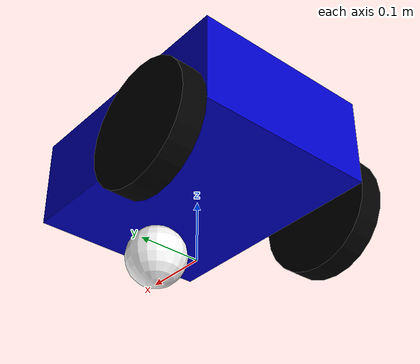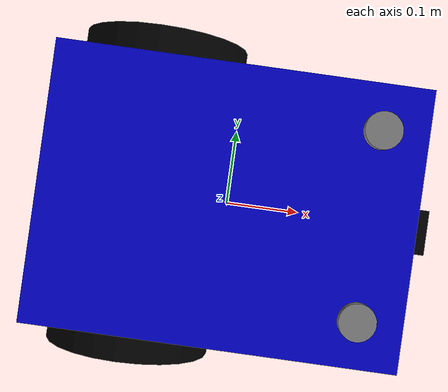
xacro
<?xml version="1.0"?>
<robot xmlns:xacro="http://www.ros.org/wiki/xacro" name="sortabot">

  <!-- MATERIALS -->
  <material name="blue"><color rgba="0 0 0.8 1"/></material>
  <material name="black"><color rgba="0 0 0 1"/></material>
  <material name="white"><color rgba="1 1 1 1"/></material>
  <material name="red"><color rgba="0.8 0 0 1"/></material>
  <material name="grey"><color rgba="0.5 0.5 0.5 1"/></material>

  <!-- CONSTANTS -->
  <xacro:property name="mass_base" value="5.0"/>
  <xacro:property name="chassis_length" value="0.4"/>
  <xacro:property name="chassis_width" value="0.3"/>
  <xacro:property name="chassis_height" value="0.15"/>
  <xacro:property name="wheel_radius" value="0.1"/>
  <xacro:property name="wheel_width" value="0.04"/>
  <xacro:property name="wheel_offset" value="0.17"/>

  <!-- BASE -->
  <link name="base_footprint"/>

  <joint name="base_footprint_joint" type="fixed">
    <parent link="base_footprint"/>
    <child link="base_link"/>
    <origin xyz="0 0 ${wheel_radius}" rpy="0 0 0"/>
  </joint>

  <link name="base_link">
    <visual>
      <origin xyz="0 0 ${chassis_height/2}" rpy="0 0 0"/>
      <geometry><box size="${chassis_length} ${chassis_width} ${chassis_height}"/></geometry>
      <material name="blue"/>
    </visual>
    <collision>
      <origin xyz="0 0 ${chassis_height/2}" rpy="0 0 0"/>
      <geometry><box size="${chassis_length} ${chassis_width} ${chassis_height}"/></geometry>
    </collision>
    <inertial>
      <!-- Lower Center of Mass for stability -->
      <origin xyz="0 0 ${chassis_height/4}" rpy="0 0 0"/>
      <mass value="${mass_base}"/>
      <inertia ixx="0.1" ixy="0.0" ixz="0.0" iyy="0.1" iyz="0.0" izz="0.1"/>
    </inertial>
  </link>

  <!-- WHEEL MACRO -->
  <xacro:macro name="wheel" params="prefix y_reflect">
    <link name="${prefix}_wheel">
      <visual>
        <origin xyz="0 0 0" rpy="${pi/2} 0 0"/>
        <geometry><cylinder radius="${wheel_radius}" length="${wheel_width}"/></geometry>
        <material name="black"/>
      </visual>
      <collision>
        <origin xyz="0 0 0" rpy="${pi/2} 0 0"/>
        <geometry><cylinder radius="${wheel_radius}" length="${wheel_width}"/></geometry>
      </collision>
      <inertial>
        <mass value="0.5"/>
        <inertia ixx="0.01" ixy="0" ixz="0" iyy="0.01" iyz="0" izz="0.01"/>
      </inertial>
    </link>

    <joint name="${prefix}_wheel_joint" type="continuous">
      <parent link="base_link"/>
      <child link="${prefix}_wheel"/>
      <origin xyz="-${chassis_length/4} ${y_reflect * wheel_offset} 0" rpy="0 0 0"/>
      <axis xyz="0 1 0"/>
    </joint>
  </xacro:macro>

  <xacro:wheel prefix="left" y_reflect="1"/>
  <xacro:wheel prefix="right" y_reflect="-1"/>

  <!-- CASTER (Front) -->
  <link name="caster_wheel">
    <visual>
      <geometry><sphere radius="${wheel_radius/2}"/></geometry>
      <material name="white"/>
    </visual>
    <collision>
      <geometry><sphere radius="${wheel_radius/2}"/></geometry>
    </collision>
    <inertial>
      <mass value="0.2"/>
      <inertia ixx="0.001" ixy="0" ixz="0" iyy="0.001" iyz="0" izz="0.001"/>
    </inertial>
  </link>

  <joint name="caster_wheel_joint" type="fixed">
    <parent link="base_link"/>
    <child link="caster_wheel"/>
    <origin xyz="${chassis_length/2 - wheel_radius} 0 -0.05" rpy="0 0 0"/>
  </joint>

  <!-- ARMS (Simplified for weight stability) -->
  <xacro:macro name="arm" params="prefix y_offset">
    <link name="${prefix}_arm_base">
      <visual><geometry><cylinder radius="0.02" length="0.02"/></geometry><material name="grey"/></visual>
      <inertial><mass value="0.05"/><inertia ixx="0.0001" ixy="0" ixz="0" iyy="0.0001" iyz="0" izz="0.0001"/></inertial>
    </link>
    <joint name="${prefix}_arm_base_joint" type="fixed">
      <parent link="base_link"/>
      <child link="${prefix}_arm_base"/>
      <origin xyz="${chassis_length/2 - 0.05} ${y_offset} ${chassis_height}" rpy="0 0 0"/>
    </joint>
  </xacro:macro>

  <xacro:arm prefix="left" y_offset="0.1"/>
  <xacro:arm prefix="right" y_offset="-0.1"/>

  <!-- SENSORS -->
  <xacro:include filename="$(find sortabot)/urdf/sortabot_sensors.xacro"/>

  <!-- GAZEBO -->
  <gazebo reference="base_link"><material>Gazebo/Blue</material></gazebo>
  <gazebo reference="left_wheel"><material>Gazebo/Black</material><mu1>1.0</mu1><mu2>1.0</mu2><kp>1000000.0</kp><kd>100.0</kd></gazebo>
  <gazebo reference="right_wheel"><material>Gazebo/Black</material><mu1>1.0</mu1><mu2>1.0</mu2><kp>1000000.0</kp><kd>100.0</kd></gazebo>
  <gazebo reference="caster_wheel"><material>Gazebo/White</material><mu1>0.01</mu1><mu2>0.01</mu2></gazebo>

  <gazebo>
    <plugin filename="gz-sim-diff-drive-system" name="gz::sim::systems::DiffDrive">
      <left_joint>left_wheel_joint</left_joint>
      <right_joint>right_wheel_joint</right_joint>
      <wheel_separation>${wheel_offset * 2}</wheel_separation>
      <wheel_radius>${wheel_radius}</wheel_radius>
      <topic>/cmd_vel</topic>
      <odom_topic>/odom</odom_topic>
      <tf_topic>/tf</tf_topic>
      <frame_id>odom</frame_id>
      <child_frame_id>base_footprint</child_frame_id>
      <max_linear_acceleration>0.5</max_linear_acceleration>
      <max_angular_acceleration>1.0</max_angular_acceleration>
    </plugin>
    <plugin filename="gz-sim-joint-state-publisher-system" name="gz::sim::systems::JointStatePublisher">
      <topic>/joint_states</topic>
    </plugin>
  </gazebo>

</robot>

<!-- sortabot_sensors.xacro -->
<robot xmlns:xacro="http://www.ros.org/wiki/xacro">

    <link name="camera_link">
      <visual>
        <geometry>
          <box size="0.05 0.05 0.05"/>
        </geometry>
        <material name="black"/>
      </visual>
      <collision>
        <geometry>
          <box size="0.05 0.05 0.05"/>
        </geometry>
      </collision>
      <inertial>
        <mass value="0.01"/>
        <inertia ixx="0.00001" ixy="0.0" ixz="0.0" iyy="0.00001" iyz="0.0" izz="0.00001"/>
      </inertial>
    </link>

    <joint name="camera_joint" type="fixed">
      <parent link="base_link"/>
      <child link="camera_link"/>
      <origin xyz="${chassis_length/2} 0 ${chassis_height/2}" rpy="0 0 0"/>
    </joint>

    <gazebo reference="camera_link">
      <sensor name="camera" type="camera">
        <pose>0 0 0 0 0 0</pose>
        <visualize>true</visualize>
        <update_rate>10</update_rate>
        <camera>
          <horizontal_fov>1.089</horizontal_fov>
          <image>
            <format>R8G8B8</format>
            <width>640</width>
            <height>480</height>
          </image>
          <clip>
            <near>0.05</near>
            <far>8.0</far>
          </clip>
        </camera>
        <topic>camera/image_raw</topic>
        <plugin filename="gz-sim-sensors-system" name="gz::sim::systems::Sensors">
          <render_engine>ogre2</render_engine>
        </plugin>
      </sensor>
    </gazebo>

    <link name="ldr_link">
      <visual>
        <geometry>
          <cylinder radius="0.03" length="0.04"/>
        </geometry>
        <material name="blue"/>
      </visual>
      <collision>
        <geometry>
          <cylinder radius="0.03" length="0.04"/>
        </geometry>
      </collision>
      <inertial>
        <mass value="0.01"/>
        <inertia ixx="0.00001" ixy="0.0" ixz="0.0" iyy="0.00001" iyz="0.0" izz="0.00001"/>
      </inertial>
    </link>

    <joint name="ldr_joint" type="fixed">
      <parent link="base_link"/>
      <child link="ldr_link"/>
      <origin xyz="${chassis_length/2 - 0.05} 0 0.12" rpy="0 0 0"/>
    </joint>

</robot>
